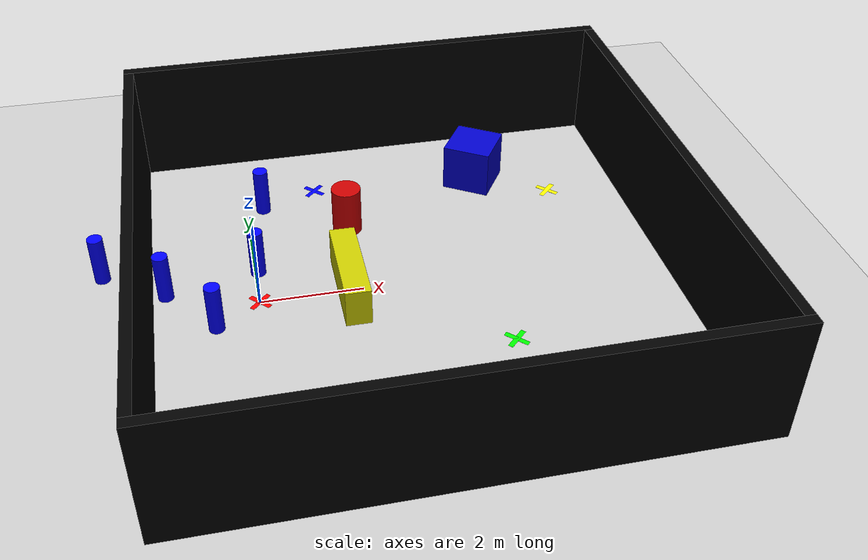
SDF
<sdf version="1.5">
 <world name="Test_World">
  <physics name="default_physics" default="0" type="ode">
   <gravity>0 0 -9.8066</gravity>
   <ode>
    <solver>
     <type>quick</type>
     <iters>10</iters>
     <sor>1.3</sor>
     <use_dynamic_moi_rescaling>0</use_dynamic_moi_rescaling>
    </solver>
    <constraints>
     <cfm>0</cfm>
     <erp>0.2</erp>
     <contact_max_correcting_vel>100</contact_max_correcting_vel>
     <contact_surface_layer>0.001</contact_surface_layer>
    </constraints>
   </ode>
   <max_step_size>0.02</max_step_size>
   <real_time_factor>0.5</real_time_factor>
   <real_time_update_rate>25</real_time_update_rate>
   <magnetic_field>6.0e-6 2.3e-5 -4.2e-5</magnetic_field>
  </physics>
  <light type="directional" name="sun">
   <cast_shadows>false</cast_shadows>
   <pose>0 0 10 0 0 0</pose>
   <diffuse>0.8 0.8 0.8 1</diffuse>
   <specular>0.2 0.2 0.2 1</specular>
   <attenuation>
    <range>1000</range>
    <constant>0.9</constant>
    <linear>0.01</linear>
    <quadratic>0.001</quadratic>
   </attenuation>
   <direction>-0.5 0.1 -0.9</direction>
  </light>
  <model name="walls_10x10_center">
   <pose>3 0 0 0 0 0</pose>
   <static>true</static>
   <link name="wall_north">
    <pose>0 5.1 1.25 0 0 0</pose>
    <collision name="col_north"><geometry><box><size>10.4 0.2 2.5</size></box></geometry></collision>
    <visual name="vis_north">
     <geometry><box><size>10.4 0.2 2.5</size></box></geometry>
     <material>
      <ambient>0.1 0.1 0.1 1</ambient>
      <diffuse>0 0 0 1</diffuse>
      <specular>0.4 0.4 0.4 1</specular>
     </material>
    </visual>
   </link>
   <link name="wall_south">
    <pose>0 -5.1 1.25 0 0 0</pose>
    <collision name="col_south"><geometry><box><size>10.4 0.2 2.5</size></box></geometry></collision>
    <visual name="vis_south">
     <geometry><box><size>10.4 0.2 2.5</size></box></geometry>
     <material>
      <ambient>0.1 0.1 0.1 1</ambient>
      <diffuse>0 0 0 1</diffuse>
      <specular>0.4 0.4 0.4 1</specular>
     </material>
    </visual>
   </link>
   <link name="wall_east">
    <pose>5.1 0 1.25 0 0 0</pose>
    <collision name="col_east"><geometry><box><size>0.2 10.0 2.5</size></box></geometry></collision>
    <visual name="vis_east">
     <geometry><box><size>0.2 10.0 2.5</size></box></geometry>
     <material>
      <ambient>0.1 0.1 0.1 1</ambient>
      <diffuse>0 0 0 1</diffuse>
      <specular>0.4 0.4 0.4 1</specular>
     </material>
    </visual>
   </link>
   <link name="wall_west">
    <pose>-5.1 0 1.25 0 0 0</pose>
    <collision name="col_west"><geometry><box><size>0.2 10.0 2.5</size></box></geometry></collision>
    <visual name="vis_west">
     <geometry><box><size>0.2 10.0 2.5</size></box></geometry>
     <material>
      <ambient>0.1 0.1 0.1 1</ambient>
      <diffuse>0 0 0 1</diffuse>
      <specular>0.4 0.4 0.4 1</specular>
     </material>
    </visual>
   </link>
  </model>
  <include><uri>https://fuel.gazebosim.org/1.0/OpenRobotics/models/Ground Plane</uri></include>
  <model name="floor_crosses">
   <static>true</static>
   <pose>0 0 0.005 0 0 0</pose>
   <link name="cross_R">
    <pose>0 0 0 0 0 0.785</pose>
    <visual name="vis_h">
     <geometry><box><size>0.5 0.1 0.001</size></box></geometry>
     <material><ambient>1 0 0 1</ambient><diffuse>1 0 0 1</diffuse></material>
    </visual>
    <visual name="vis_v">
     <pose>0 0 0 0 0 1.57</pose>
     <geometry><box><size>0.5 0.1 0.001</size></box></geometry>
     <material><ambient>1 0 0 1</ambient><diffuse>1 0 0 1</diffuse></material>
    </visual>
   </link>
   <link name="cross_G">
    <pose>4.5 -2 0 0 0 0.785</pose>
    <visual name="vis_h">
     <geometry><box><size>0.5 0.1 0.001</size></box></geometry>
     <material><ambient>0 1 0 1</ambient><diffuse>0 1 0 1</diffuse></material>
    </visual>
    <visual name="vis_v">
     <pose>0 0 0 0 0 1.57</pose>
     <geometry><box><size>0.5 0.1 0.001</size></box></geometry>
     <material><ambient>0 1 0 1</ambient><diffuse>0 1 0 1</diffuse></material>
    </visual>
   </link>
   <link name="cross_B">
    <pose>1.5 3.5 0 0 0 0.785</pose>
    <visual name="vis_h">
     <geometry><box><size>0.5 0.1 0.001</size></box></geometry>
     <material><ambient>0 0 1 1</ambient><diffuse>0 0 1 1</diffuse></material>
    </visual>
    <visual name="vis_v">
     <pose>0 0 0 0 0 1.57</pose>
     <geometry><box><size>0.5 0.1 0.001</size></box></geometry>
     <material><ambient>0 0 1 1</ambient><diffuse>0 0 1 1</diffuse></material>
    </visual>
   </link>
   <link name="cross_Y">
    <pose>6.5 2.5 0 0 0 0.785</pose>
    <visual name="vis_h">
     <geometry><box><size>0.5 0.1 0.001</size></box></geometry>
     <material><ambient>1 1 0 1</ambient><diffuse>1 1 0 1</diffuse></material>
    </visual>
    <visual name="vis_v">
     <pose>0 0 0 0 0 1.57</pose>
     <geometry><box><size>0.5 0.1 0.001</size></box></geometry>
     <material><ambient>1 1 0 1</ambient><diffuse>1 1 0 1</diffuse></material>
    </visual>
   </link>
  </model>
  <model name="cylinder_forest_irregular">
   <pose>-1.75 0.5 0.5 0 0 0</pose>
   <static>true</static>
   <link name="c1">
    <collision name="col">
     <geometry><cylinder><radius>0.15</radius><length>1</length></cylinder></geometry>
    </collision>
    <visual name="vis">
     <geometry><cylinder><radius>0.15</radius><length>1</length></cylinder></geometry>
     <material><ambient>0 0 1 1</ambient><diffuse>0 0 1 1</diffuse></material>
    </visual>
   </link>
   <link name="c2">
    <pose>1.8 0.4 0 0 0 0</pose>
    <collision name="col">
     <geometry><cylinder><radius>0.15</radius><length>1</length></cylinder></geometry>
    </collision>
    <visual name="vis">
     <geometry><cylinder><radius>0.15</radius><length>1</length></cylinder></geometry>
     <material><ambient>0 0 1 1</ambient><diffuse>0 0 1 1</diffuse></material>
    </visual>
   </link>
   <link name="c3">
    <pose>-0.5 2.2 0 0 0 0</pose>
    <collision name="col">
     <geometry><cylinder><radius>0.15</radius><length>1</length></cylinder></geometry>
    </collision>
    <visual name="vis">
     <geometry><cylinder><radius>0.15</radius><length>1</length></cylinder></geometry>
     <material><ambient>0 0 1 1</ambient><diffuse>0 0 1 1</diffuse></material>
    </visual>
   </link>
   <link name="c4">
    <pose>2.1 2.5 0 0 0 0</pose>
    <collision name="col">
     <geometry><cylinder><radius>0.15</radius><length>1</length></cylinder></geometry>
    </collision>
    <visual name="vis">
     <geometry><cylinder><radius>0.15</radius><length>1</length></cylinder></geometry>
     <material><ambient>0 0 1 1</ambient><diffuse>0 0 1 1</diffuse></material>
    </visual>
   </link>
   <link name="c5">
    <pose>-1.2 0.8 0 0 0 0</pose>
    <collision name="col">
     <geometry><cylinder><radius>0.15</radius><length>1</length></cylinder></geometry>
    </collision>
    <visual name="vis">
     <geometry><cylinder><radius>0.15</radius><length>1</length></cylinder></geometry>
     <material><ambient>0 0 1 1</ambient><diffuse>0 0 1 1</diffuse></material>
    </visual>
   </link>
   <link name="c6">
    <pose>0.9 -1.1 0 0 0 0</pose>
    <collision name="col">
     <geometry><cylinder><radius>0.15</radius><length>1</length></cylinder></geometry>
    </collision>
    <visual name="vis">
     <geometry><cylinder><radius>0.15</radius><length>1</length></cylinder></geometry>
     <material><ambient>0 0 1 1</ambient><diffuse>0 0 1 1</diffuse></material>
    </visual>
   </link>
  </model>
  <model name="obst_cube_large">
   <pose>5 3.25 0.5 0 0 1</pose>
   <static>true</static>
   <link name="link">
    <collision name="collision"><geometry><box><size>1 1 1</size></box></geometry></collision>
    <visual name="visual">
     <geometry><box><size>1 1 1</size></box></geometry>
     <material><ambient>0 0 0.8 1</ambient><diffuse>0 0 0.8 1</diffuse></material>
    </visual>
   </link>
  </model>
  <model name="obst_cylinder">
   <pose>2 2 0.5 0 0 0</pose>
   <static>true</static>
   <link name="link">
    <collision name="collision">
     <geometry><cylinder><radius>0.3</radius><length>1</length></cylinder></geometry>
    </collision>
    <visual name="visual">
     <geometry><cylinder><radius>0.3</radius><length>1</length></cylinder></geometry>
     <material><ambient>0.8 0 0 1</ambient><diffuse>0.8 0 0 1</diffuse></material>
    </visual>
   </link>
  </model>
  <model name="obst_barrier">
   <pose>1.75 0 0.25 0 0 1.57</pose>
   <static>true</static>
   <link name="link">
    <collision name="collision"><geometry><box><size>2 0.5 1.0</size></box></geometry></collision>
    <visual name="visual">
     <geometry><box><size>2 0.5 1.0</size></box></geometry>
     <material><ambient>0.8 0.8 0 1</ambient><diffuse>0.8 0.8 0 1</diffuse></material>
    </visual>
   </link>
  </model>
  <plugin name="ignition::gazebo::systems::Physics" filename="ignition-gazebo-physics-system"/>
  <plugin name="ignition::gazebo::systems::UserCommands" filename="ignition-gazebo-user-commands-system"/>
  <plugin name="ignition::gazebo::systems::SceneBroadcaster" filename="ignition-gazebo-scene-broadcaster-system"/>
  <plugin name="ignition::gazebo::systems::Contact" filename="ignition-gazebo-contact-system"/>
 </world>
</sdf>
